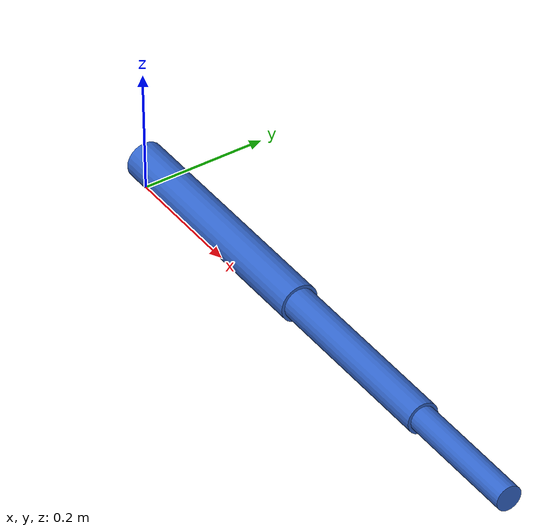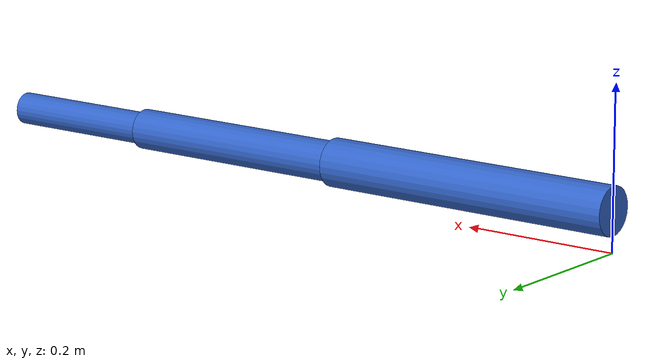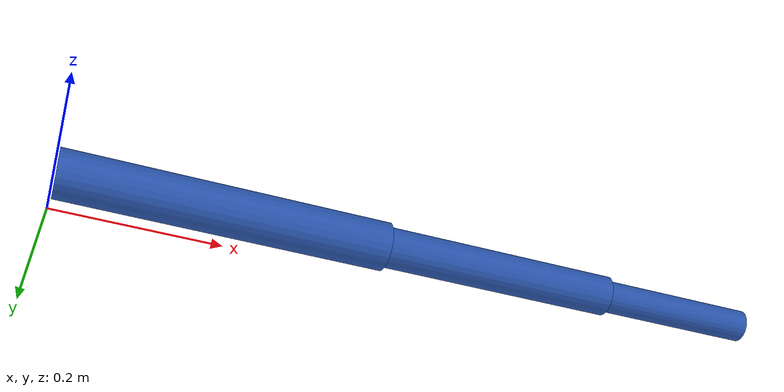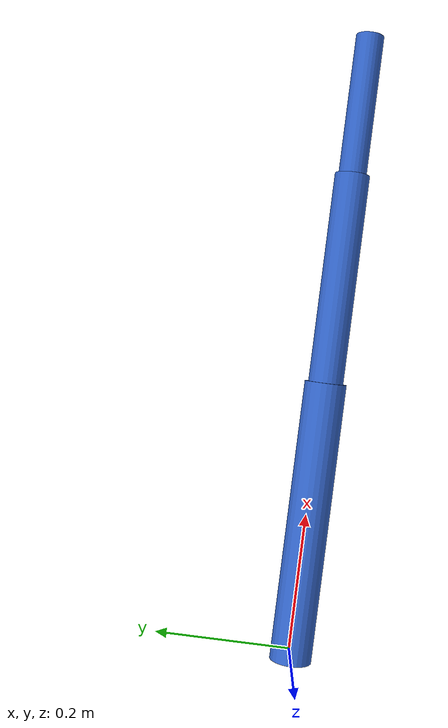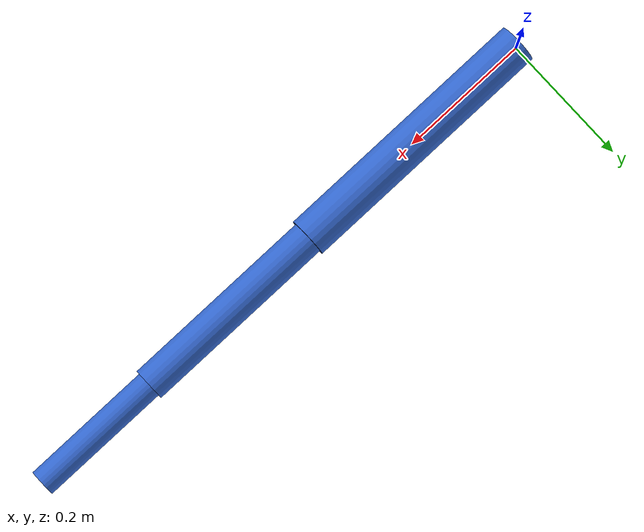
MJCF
<mujoco model="rrr">
  <compiler angle="radian"/>

  <option timestep="0.001"/>

  <worldbody>
    <body name="base_link">
      <inertial pos="0 0 0" mass="1" diaginertia="0.001 0.001 0.001"/>
      <body name="link1" pos="0 0 0.05">
        <inertial pos="0.2 0 0" quat="0.5 0.5 0.5 0.5" mass="2" diaginertia="0.028 0.028 0.001"/>
        <joint name="joint1" pos="0 0 0" axis="0 1 0" range="-3.14159 3.14159" actuatorfrcrange="-50 50" damping="0.1"/>
        <geom size="0.03 0.2" pos="0.2 0 0" quat="0.707105 0 0.707108 0" type="cylinder" rgba="0.2 0.4 0.8 1"/>
        <body name="link2" pos="0.4 0 0">
          <inertial pos="0.15 0 0" quat="0.5 0.5 0.5 0.5" mass="1.5" diaginertia="0.012 0.012 0.001"/>
          <joint name="joint2" pos="0 0 0" axis="0 0 1" range="-3.14159 3.14159" actuatorfrcrange="-30 30" damping="0.1"/>
          <geom size="0.025 0.15" pos="0.15 0 0" quat="0.707105 0 0.707108 0" type="cylinder" rgba="0.2 0.4 0.8 1"/>
          <body name="link3" pos="0.3 0 0">
            <inertial pos="0.1 0 0" quat="0.5 0.5 0.5 0.5" mass="1" diaginertia="0.03 0.03 0.002"/>
            <joint name="joint3" pos="0 0 0" axis="0 0 1" range="-3.14159 3.14159" actuatorfrcrange="-20 20" damping="0.1"/>
            <geom size="0.02 0.1" pos="0.1 0 0" quat="0.707105 0 0.707108 0" type="cylinder" rgba="0.2 0.4 0.8 1"/>
            <body name="tip" pos="0.2 0 0"/>
          </body>
        </body>
      </body>
    </body>
  </worldbody>
</mujoco>
